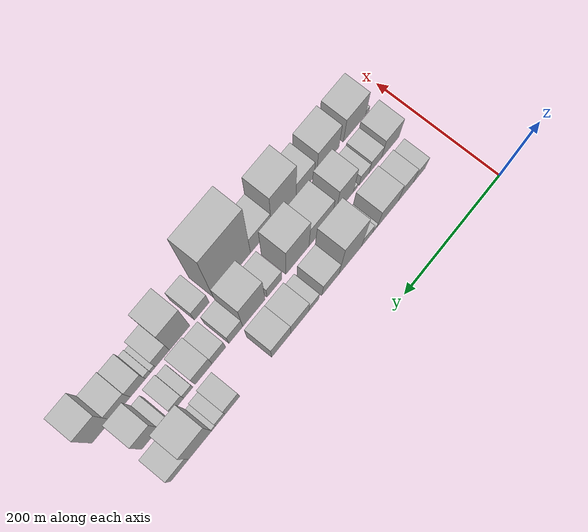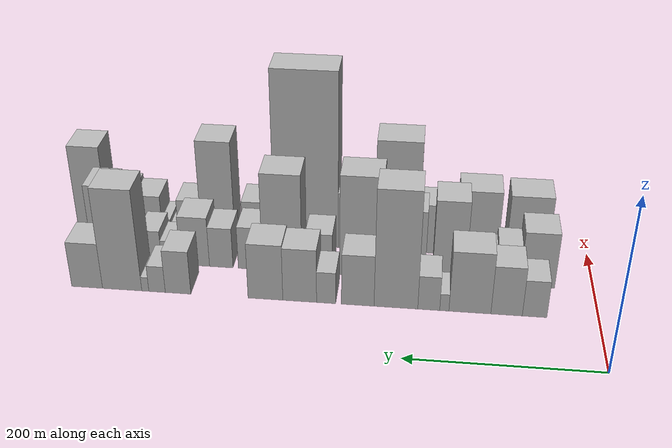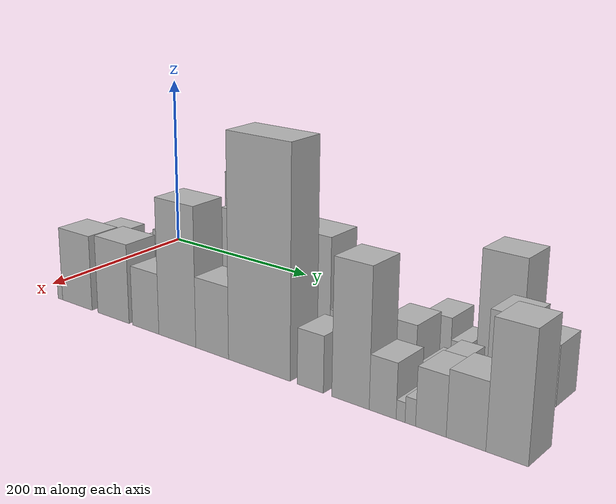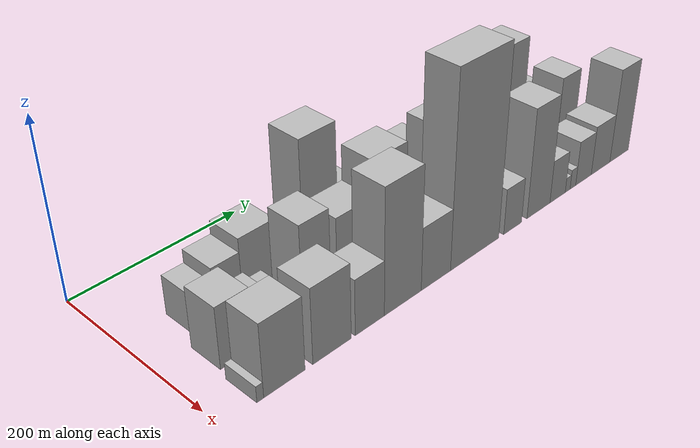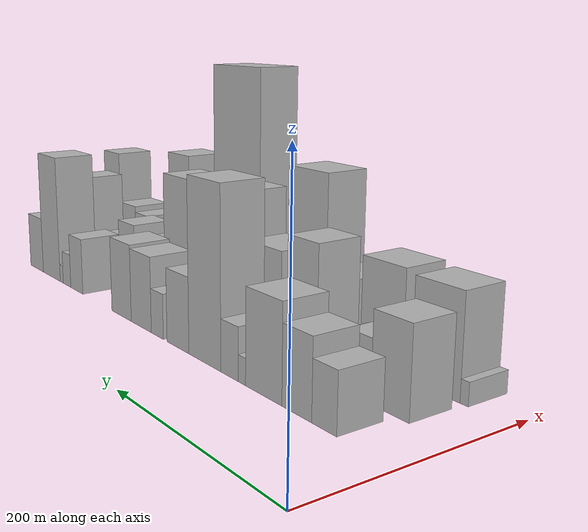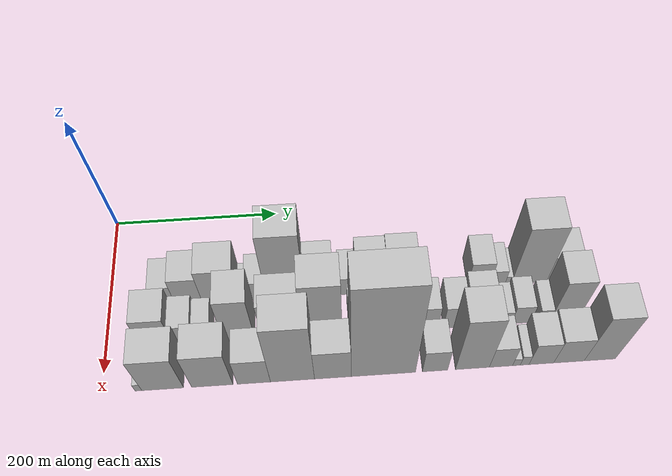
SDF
<sdf version="1.6">
 <world name="default">
  <model name="building_16">
   <static>1</static>
   <pose>100.0000 65.6419 0 0.000000 0.000000 0.000000</pose>
   <link name="link">
    <pose>0 0 22.50 0 0 0</pose>
    <collision name="collision"><geometry><box><size>40.0000 25.1513 45.0000</size></box></geometry></collision>
    <visual name="visual">
     <cast_shadows>0</cast_shadows>
     <geometry><box><size>40.0000 25.1513 45.0000</size></box></geometry>
     <material>
      <script>
       <uri>model://HANNAS_wall/materials/scripts</uri>
       <uri>model://HANNAS_wall/materials/textures</uri>
       <name>vrc/HANNAS_wall</name>
      </script>
     </material>
    </visual>
   </link>
  </model>
  <model name="building_17">
   <static>1</static>
   <pose>100.0000 94.3619 0 0.000000 0.000000 0.000000</pose>
   <link name="link">
    <pose>0 0 30.00 0 0 0</pose>
    <collision name="collision"><geometry><box><size>40.0000 32.2888 60.0000</size></box></geometry></collision>
    <visual name="visual">
     <cast_shadows>0</cast_shadows>
     <geometry><box><size>40.0000 32.2888 60.0000</size></box></geometry>
     <material>
      <script>
       <uri>model://HANNAS_wall/materials/scripts</uri>
       <uri>model://HANNAS_wall/materials/textures</uri>
       <name>vrc/HANNAS_wall</name>
      </script>
     </material>
    </visual>
   </link>
  </model>
  <model name="building_18">
   <static>1</static>
   <pose>100.0000 132.1816 0 0.000000 0.000000 0.000000</pose>
   <link name="link">
    <pose>0 0 37.50 0 0 0</pose>
    <collision name="collision"><geometry><box><size>40.0000 43.3505 75.0000</size></box></geometry></collision>
    <visual name="visual">
     <cast_shadows>0</cast_shadows>
     <geometry><box><size>40.0000 43.3505 75.0000</size></box></geometry>
     <material>
      <script>
       <uri>model://HANNAS_wall/materials/scripts</uri>
       <uri>model://HANNAS_wall/materials/textures</uri>
       <name>vrc/HANNAS_wall</name>
      </script>
     </material>
    </visual>
   </link>
  </model>
  <model name="building_19">
   <static>1</static>
   <pose>100.0000 158.6181 0 0.000000 0.000000 0.000000</pose>
   <link name="link">
    <pose>0 0 10.50 0 0 0</pose>
    <collision name="collision"><geometry><box><size>40.0000 9.5225 21.0000</size></box></geometry></collision>
    <visual name="visual">
     <cast_shadows>0</cast_shadows>
     <geometry><box><size>40.0000 9.5225 21.0000</size></box></geometry>
     <material>
      <script>
       <uri>model://HANNAS_wall/materials/scripts</uri>
       <uri>model://HANNAS_wall/materials/textures</uri>
       <name>vrc/HANNAS_wall</name>
      </script>
     </material>
    </visual>
   </link>
  </model>
  <model name="building_20">
   <static>1</static>
   <pose>100.0000 174.7911 0 0.000000 0.000000 0.000000</pose>
   <link name="link">
    <pose>0 0 21.00 0 0 0</pose>
    <collision name="collision"><geometry><box><size>40.0000 22.8234 42.0000</size></box></geometry></collision>
    <visual name="visual">
     <cast_shadows>0</cast_shadows>
     <geometry><box><size>40.0000 22.8234 42.0000</size></box></geometry>
     <material>
      <script>
       <uri>model://HANNAS_wall/materials/scripts</uri>
       <uri>model://HANNAS_wall/materials/textures</uri>
       <name>vrc/HANNAS_wall</name>
      </script>
     </material>
    </visual>
   </link>
  </model>
  <model name="building_21">
   <static>1</static>
   <pose>100.0000 209.1163 0 0.000000 0.000000 0.000000</pose>
   <link name="link">
    <pose>0 0 72.00 0 0 0</pose>
    <collision name="collision"><geometry><box><size>40.0000 45.8270 144.0000</size></box></geometry></collision>
    <visual name="visual">
     <cast_shadows>0</cast_shadows>
     <geometry><box><size>40.0000 45.8270 144.0000</size></box></geometry>
     <material>
      <script>
       <uri>model://HANNAS_wall/materials/scripts</uri>
       <uri>model://HANNAS_wall/materials/textures</uri>
       <name>vrc/HANNAS_wall</name>
      </script>
     </material>
    </visual>
   </link>
  </model>
  <model name="building_22">
   <static>1</static>
   <pose>100.0000 249.2329 0 0.000000 0.000000 0.000000</pose>
   <link name="link">
    <pose>0 0 31.50 0 0 0</pose>
    <collision name="collision"><geometry><box><size>40.0000 34.4062 63.0000</size></box></geometry></collision>
    <visual name="visual">
     <cast_shadows>0</cast_shadows>
     <geometry><box><size>40.0000 34.4062 63.0000</size></box></geometry>
     <material>
      <script>
       <uri>model://HANNAS_wall/materials/scripts</uri>
       <uri>model://HANNAS_wall/materials/textures</uri>
       <name>vrc/HANNAS_wall</name>
      </script>
     </material>
    </visual>
   </link>
  </model>
  <model name="building_23">
   <static>1</static>
   <pose>100.0000 282.5819 0 0.000000 0.000000 0.000000</pose>
   <link name="link">
    <pose>0 0 19.50 0 0 0</pose>
    <collision name="collision"><geometry><box><size>40.0000 20.2919 39.0000</size></box></geometry></collision>
    <visual name="visual">
     <cast_shadows>0</cast_shadows>
     <geometry><box><size>40.0000 20.2919 39.0000</size></box></geometry>
     <material>
      <script>
       <uri>model://HANNAS_wall/materials/scripts</uri>
       <uri>model://HANNAS_wall/materials/textures</uri>
       <name>vrc/HANNAS_wall</name>
      </script>
     </material>
    </visual>
   </link>
  </model>
  <model name="building_24">
   <static>1</static>
   <pose>100.0000 310.7004 0 0.000000 0.000000 0.000000</pose>
   <link name="link">
    <pose>0 0 33.00 0 0 0</pose>
    <collision name="collision"><geometry><box><size>40.0000 35.9451 66.0000</size></box></geometry></collision>
    <visual name="visual">
     <cast_shadows>0</cast_shadows>
     <geometry><box><size>40.0000 35.9451 66.0000</size></box></geometry>
     <material>
      <script>
       <uri>model://HANNAS_wall/materials/scripts</uri>
       <uri>model://HANNAS_wall/materials/textures</uri>
       <name>vrc/HANNAS_wall</name>
      </script>
     </material>
    </visual>
   </link>
  </model>
  <model name="building_25">
   <static>1</static>
   <pose>100.0000 347.2897 0 0.000000 0.000000 0.000000</pose>
   <link name="link">
    <pose>0 0 34.50 0 0 0</pose>
    <collision name="collision"><geometry><box><size>40.0000 37.2335 69.0000</size></box></geometry></collision>
    <visual name="visual">
     <cast_shadows>0</cast_shadows>
     <geometry><box><size>40.0000 37.2335 69.0000</size></box></geometry>
     <material>
      <script>
       <uri>model://HANNAS_wall/materials/scripts</uri>
       <uri>model://HANNAS_wall/materials/textures</uri>
       <name>vrc/HANNAS_wall</name>
      </script>
     </material>
    </visual>
   </link>
  </model>
  <model name="building_26">
   <static>1</static>
   <pose>100.0000 441.6426 0 0.000000 0.000000 0.000000</pose>
   <link name="link">
    <pose>0 0 27.00 0 0 0</pose>
    <collision name="collision"><geometry><box><size>40.0000 27.8241 54.0000</size></box></geometry></collision>
    <visual name="visual">
     <cast_shadows>0</cast_shadows>
     <geometry><box><size>40.0000 27.8241 54.0000</size></box></geometry>
     <material>
      <script>
       <uri>model://HANNAS_wall/materials/scripts</uri>
       <uri>model://HANNAS_wall/materials/textures</uri>
       <name>vrc/HANNAS_wall</name>
      </script>
     </material>
    </visual>
   </link>
  </model>
  <model name="building_27">
   <static>1</static>
   <pose>100.0000 464.5478 0 0.000000 0.000000 0.000000</pose>
   <link name="link">
    <pose>0 0 16.50 0 0 0</pose>
    <collision name="collision"><geometry><box><size>40.0000 17.9862 33.0000</size></box></geometry></collision>
    <visual name="visual">
     <cast_shadows>0</cast_shadows>
     <geometry><box><size>40.0000 17.9862 33.0000</size></box></geometry>
     <material>
      <script>
       <uri>model://HANNAS_wall/materials/scripts</uri>
       <uri>model://HANNAS_wall/materials/textures</uri>
       <name>vrc/HANNAS_wall</name>
      </script>
     </material>
    </visual>
   </link>
  </model>
  <model name="building_28">
   <static>1</static>
   <pose>100.0000 477.3907 0 0.000000 0.000000 0.000000</pose>
   <link name="link">
    <pose>0 0 9.00 0 0 0</pose>
    <collision name="collision"><geometry><box><size>40.0000 7.6996 18.0000</size></box></geometry></collision>
    <visual name="visual">
     <cast_shadows>0</cast_shadows>
     <geometry><box><size>40.0000 7.6996 18.0000</size></box></geometry>
     <material>
      <script>
       <uri>model://HANNAS_wall/materials/scripts</uri>
       <uri>model://HANNAS_wall/materials/textures</uri>
       <name>vrc/HANNAS_wall</name>
      </script>
     </material>
    </visual>
   </link>
  </model>
  <model name="building_29">
   <static>1</static>
   <pose>100.0000 502.8039 0 0.000000 0.000000 0.000000</pose>
   <link name="link">
    <pose>0 0 63.00 0 0 0</pose>
    <collision name="collision"><geometry><box><size>40.0000 43.1269 126.0000</size></box></geometry></collision>
    <visual name="visual">
     <cast_shadows>0</cast_shadows>
     <geometry><box><size>40.0000 43.1269 126.0000</size></box></geometry>
     <material>
      <script>
       <uri>model://HANNAS_wall/materials/scripts</uri>
       <uri>model://HANNAS_wall/materials/textures</uri>
       <name>vrc/HANNAS_wall</name>
      </script>
     </material>
    </visual>
   </link>
  </model>
  <model name="building_30">
   <static>1</static>
   <pose>100.0000 541.4067 0 0.000000 0.000000 0.000000</pose>
   <link name="link">
    <pose>0 0 28.50 0 0 0</pose>
    <collision name="collision"><geometry><box><size>40.0000 34.0788 57.0000</size></box></geometry></collision>
    <visual name="visual">
     <cast_shadows>0</cast_shadows>
     <geometry><box><size>40.0000 34.0788 57.0000</size></box></geometry>
     <material>
      <script>
       <uri>model://HANNAS_wall/materials/scripts</uri>
       <uri>model://HANNAS_wall/materials/textures</uri>
       <name>vrc/HANNAS_wall</name>
      </script>
     </material>
    </visual>
   </link>
  </model>
  <model name="building_48">
   <static>1</static>
   <pose>152.0000 59.6557 0 0.000000 0.000000 0.000000</pose>
   <link name="link">
    <pose>0 0 34.50 0 0 0</pose>
    <collision name="collision"><geometry><box><size>40.0000 36.9317 69.0000</size></box></geometry></collision>
    <visual name="visual">
     <cast_shadows>0</cast_shadows>
     <geometry><box><size>40.0000 36.9317 69.0000</size></box></geometry>
     <material>
      <script>
       <uri>model://HANNAS_wall/materials/scripts</uri>
       <uri>model://HANNAS_wall/materials/textures</uri>
       <name>vrc/HANNAS_wall</name>
      </script>
     </material>
    </visual>
   </link>
  </model>
  <model name="building_49">
   <static>1</static>
   <pose>152.0000 90.9917 0 0.000000 0.000000 0.000000</pose>
   <link name="link">
    <pose>0 0 24.00 0 0 0</pose>
    <collision name="collision"><geometry><box><size>40.0000 25.7403 48.0000</size></box></geometry></collision>
    <visual name="visual">
     <cast_shadows>0</cast_shadows>
     <geometry><box><size>40.0000 25.7403 48.0000</size></box></geometry>
     <material>
      <script>
       <uri>model://HANNAS_wall/materials/scripts</uri>
       <uri>model://HANNAS_wall/materials/textures</uri>
       <name>vrc/HANNAS_wall</name>
      </script>
     </material>
    </visual>
   </link>
  </model>
  <model name="building_50">
   <static>1</static>
   <pose>152.0000 114.0947 0 0.000000 0.000000 0.000000</pose>
   <link name="link">
    <pose>0 0 19.50 0 0 0</pose>
    <collision name="collision"><geometry><box><size>40.0000 20.4657 39.0000</size></box></geometry></collision>
    <visual name="visual">
     <cast_shadows>0</cast_shadows>
     <geometry><box><size>40.0000 20.4657 39.0000</size></box></geometry>
     <material>
      <script>
       <uri>model://HANNAS_wall/materials/scripts</uri>
       <uri>model://HANNAS_wall/materials/textures</uri>
       <name>vrc/HANNAS_wall</name>
      </script>
     </material>
    </visual>
   </link>
  </model>
  <model name="building_51">
   <static>1</static>
   <pose>152.0000 132.4865 0 0.000000 0.000000 0.000000</pose>
   <link name="link">
    <pose>0 0 9.00 0 0 0</pose>
    <collision name="collision"><geometry><box><size>40.0000 8.3181 18.0000</size></box></geometry></collision>
    <visual name="visual">
     <cast_shadows>0</cast_shadows>
     <geometry><box><size>40.0000 8.3181 18.0000</size></box></geometry>
     <material>
      <script>
       <uri>model://HANNAS_wall/materials/scripts</uri>
       <uri>model://HANNAS_wall/materials/textures</uri>
       <name>vrc/HANNAS_wall</name>
      </script>
     </material>
    </visual>
   </link>
  </model>
  <model name="building_52">
   <static>1</static>
   <pose>152.0000 154.5341 0 0.000000 0.000000 0.000000</pose>
   <link name="link">
    <pose>0 0 51.00 0 0 0</pose>
    <collision name="collision"><geometry><box><size>40.0000 35.7770 102.0000</size></box></geometry></collision>
    <visual name="visual">
     <cast_shadows>0</cast_shadows>
     <geometry><box><size>40.0000 35.7770 102.0000</size></box></geometry>
     <material>
      <script>
       <uri>model://HANNAS_wall/materials/scripts</uri>
       <uri>model://HANNAS_wall/materials/textures</uri>
       <name>vrc/HANNAS_wall</name>
      </script>
     </material>
    </visual>
   </link>
  </model>
  <model name="building_53">
   <static>1</static>
   <pose>152.0000 203.9236 0 0.000000 0.000000 0.000000</pose>
   <link name="link">
    <pose>0 0 43.50 0 0 0</pose>
    <collision name="collision"><geometry><box><size>40.0000 47.0020 87.0000</size></box></geometry></collision>
    <visual name="visual">
     <cast_shadows>0</cast_shadows>
     <geometry><box><size>40.0000 47.0020 87.0000</size></box></geometry>
     <material>
      <script>
       <uri>model://HANNAS_wall/materials/scripts</uri>
       <uri>model://HANNAS_wall/materials/textures</uri>
       <name>vrc/HANNAS_wall</name>
      </script>
     </material>
    </visual>
   </link>
  </model>
  <model name="building_54">
   <static>1</static>
   <pose>152.0000 250.4970 0 0.000000 0.000000 0.000000</pose>
   <link name="link">
    <pose>0 0 63.00 0 0 0</pose>
    <collision name="collision"><geometry><box><size>40.0000 46.1448 126.0000</size></box></geometry></collision>
    <visual name="visual">
     <cast_shadows>0</cast_shadows>
     <geometry><box><size>40.0000 46.1448 126.0000</size></box></geometry>
     <material>
      <script>
       <uri>model://HANNAS_wall/materials/scripts</uri>
       <uri>model://HANNAS_wall/materials/textures</uri>
       <name>vrc/HANNAS_wall</name>
      </script>
     </material>
    </visual>
   </link>
  </model>
  <model name="building_55">
   <static>1</static>
   <pose>152.0000 296.3945 0 0.000000 0.000000 0.000000</pose>
   <link name="link">
    <pose>0 0 25.50 0 0 0</pose>
    <collision name="collision"><geometry><box><size>40.0000 29.6503 51.0000</size></box></geometry></collision>
    <visual name="visual">
     <cast_shadows>0</cast_shadows>
     <geometry><box><size>40.0000 29.6503 51.0000</size></box></geometry>
     <material>
      <script>
       <uri>model://HANNAS_wall/materials/scripts</uri>
       <uri>model://HANNAS_wall/materials/textures</uri>
       <name>vrc/HANNAS_wall</name>
      </script>
     </material>
    </visual>
   </link>
  </model>
  <model name="building_56">
   <static>1</static>
   <pose>152.0000 337.0820 0 0.000000 0.000000 0.000000</pose>
   <link name="link">
    <pose>0 0 61.50 0 0 0</pose>
    <collision name="collision"><geometry><box><size>40.0000 43.7248 123.0000</size></box></geometry></collision>
    <visual name="visual">
     <cast_shadows>0</cast_shadows>
     <geometry><box><size>40.0000 43.7248 123.0000</size></box></geometry>
     <material>
      <script>
       <uri>model://HANNAS_wall/materials/scripts</uri>
       <uri>model://HANNAS_wall/materials/textures</uri>
       <name>vrc/HANNAS_wall</name>
      </script>
     </material>
    </visual>
   </link>
  </model>
  <model name="building_57">
   <static>1</static>
   <pose>152.0000 372.4463 0 0.000000 0.000000 0.000000</pose>
   <link name="link">
    <pose>0 0 27.00 0 0 0</pose>
    <collision name="collision"><geometry><box><size>40.0000 27.0036 54.0000</size></box></geometry></collision>
    <visual name="visual">
     <cast_shadows>0</cast_shadows>
     <geometry><box><size>40.0000 27.0036 54.0000</size></box></geometry>
     <material>
      <script>
       <uri>model://HANNAS_wall/materials/scripts</uri>
       <uri>model://HANNAS_wall/materials/textures</uri>
       <name>vrc/HANNAS_wall</name>
      </script>
     </material>
    </visual>
   </link>
  </model>
  <model name="building_58">
   <static>1</static>
   <pose>152.0000 405.1874 0 0.000000 0.000000 0.000000</pose>
   <link name="link">
    <pose>0 0 25.50 0 0 0</pose>
    <collision name="collision"><geometry><box><size>40.0000 26.4787 51.0000</size></box></geometry></collision>
    <visual name="visual">
     <cast_shadows>0</cast_shadows>
     <geometry><box><size>40.0000 26.4787 51.0000</size></box></geometry>
     <material>
      <script>
       <uri>model://HANNAS_wall/materials/scripts</uri>
       <uri>model://HANNAS_wall/materials/textures</uri>
       <name>vrc/HANNAS_wall</name>
      </script>
     </material>
    </visual>
   </link>
  </model>
  <model name="building_59">
   <static>1</static>
   <pose>152.0000 434.7213 0 0.000000 0.000000 0.000000</pose>
   <link name="link">
    <pose>0 0 31.50 0 0 0</pose>
    <collision name="collision"><geometry><box><size>40.0000 32.5890 63.0000</size></box></geometry></collision>
    <visual name="visual">
     <cast_shadows>0</cast_shadows>
     <geometry><box><size>40.0000 32.5890 63.0000</size></box></geometry>
     <material>
      <script>
       <uri>model://HANNAS_wall/materials/scripts</uri>
       <uri>model://HANNAS_wall/materials/textures</uri>
       <name>vrc/HANNAS_wall</name>
      </script>
     </material>
    </visual>
   </link>
  </model>
  <model name="building_60">
   <static>1</static>
   <pose>152.0000 463.7030 0 0.000000 0.000000 0.000000</pose>
   <link name="link">
    <pose>0 0 15.00 0 0 0</pose>
    <collision name="collision"><geometry><box><size>40.0000 17.3745 30.0000</size></box></geometry></collision>
    <visual name="visual">
     <cast_shadows>0</cast_shadows>
     <geometry><box><size>40.0000 17.3745 30.0000</size></box></geometry>
     <material>
      <script>
       <uri>model://HANNAS_wall/materials/scripts</uri>
       <uri>model://HANNAS_wall/materials/textures</uri>
       <name>vrc/HANNAS_wall</name>
      </script>
     </material>
    </visual>
   </link>
  </model>
  <model name="building_61">
   <static>1</static>
   <pose>152.0000 483.8097 0 0.000000 0.000000 0.000000</pose>
   <link name="link">
    <pose>0 0 21.00 0 0 0</pose>
    <collision name="collision"><geometry><box><size>40.0000 22.8388 42.0000</size></box></geometry></collision>
    <visual name="visual">
     <cast_shadows>0</cast_shadows>
     <geometry><box><size>40.0000 22.8388 42.0000</size></box></geometry>
     <material>
      <script>
       <uri>model://HANNAS_wall/materials/scripts</uri>
       <uri>model://HANNAS_wall/materials/textures</uri>
       <name>vrc/HANNAS_wall</name>
      </script>
     </material>
    </visual>
   </link>
  </model>
  <model name="building_62">
   <static>1</static>
   <pose>152.0000 510.8412 0 0.000000 0.000000 0.000000</pose>
   <link name="link">
    <pose>0 0 15.00 0 0 0</pose>
    <collision name="collision"><geometry><box><size>40.0000 15.2241 30.0000</size></box></geometry></collision>
    <visual name="visual">
     <cast_shadows>0</cast_shadows>
     <geometry><box><size>40.0000 15.2241 30.0000</size></box></geometry>
     <material>
      <script>
       <uri>model://HANNAS_wall/materials/scripts</uri>
       <uri>model://HANNAS_wall/materials/textures</uri>
       <name>vrc/HANNAS_wall</name>
      </script>
     </material>
    </visual>
   </link>
  </model>
  <model name="building_63">
   <static>1</static>
   <pose>152.0000 534.8917 0 0.000000 0.000000 0.000000</pose>
   <link name="link">
    <pose>0 0 48.00 0 0 0</pose>
    <collision name="collision"><geometry><box><size>40.0000 32.8769 96.0000</size></box></geometry></collision>
    <visual name="visual">
     <cast_shadows>0</cast_shadows>
     <geometry><box><size>40.0000 32.8769 96.0000</size></box></geometry>
     <material>
      <script>
       <uri>model://HANNAS_wall/materials/scripts</uri>
       <uri>model://HANNAS_wall/materials/textures</uri>
       <name>vrc/HANNAS_wall</name>
      </script>
     </material>
    </visual>
   </link>
  </model>
  <model name="building_78">
   <static>1</static>
   <pose>204.0000 40.9132 0 0.000000 0.000000 0.000000</pose>
   <link name="link">
    <pose>0 0 9.00 0 0 0</pose>
    <collision name="collision"><geometry><box><size>40.0000 7.4603 18.0000</size></box></geometry></collision>
    <visual name="visual">
     <cast_shadows>0</cast_shadows>
     <geometry><box><size>40.0000 7.4603 18.0000</size></box></geometry>
     <material>
      <script>
       <uri>model://HANNAS_wall/materials/scripts</uri>
       <uri>model://HANNAS_wall/materials/textures</uri>
       <name>vrc/HANNAS_wall</name>
      </script>
     </material>
    </visual>
   </link>
  </model>
  <model name="building_79">
   <static>1</static>
   <pose>204.0000 67.9867 0 0.000000 0.000000 0.000000</pose>
   <link name="link">
    <pose>0 0 40.50 0 0 0</pose>
    <collision name="collision"><geometry><box><size>40.0000 46.6868 81.0000</size></box></geometry></collision>
    <visual name="visual">
     <cast_shadows>0</cast_shadows>
     <geometry><box><size>40.0000 46.6868 81.0000</size></box></geometry>
     <material>
      <script>
       <uri>model://HANNAS_wall/materials/scripts</uri>
       <uri>model://HANNAS_wall/materials/textures</uri>
       <name>vrc/HANNAS_wall</name>
      </script>
     </material>
    </visual>
   </link>
  </model>
  <model name="building_80">
   <static>1</static>
   <pose>204.0000 123.5372 0 0.000000 0.000000 0.000000</pose>
   <link name="link">
    <pose>0 0 42.00 0 0 0</pose>
    <collision name="collision"><geometry><box><size>40.0000 46.4142 84.0000</size></box></geometry></collision>
    <visual name="visual">
     <cast_shadows>0</cast_shadows>
     <geometry><box><size>40.0000 46.4142 84.0000</size></box></geometry>
     <material>
      <script>
       <uri>model://HANNAS_wall/materials/scripts</uri>
       <uri>model://HANNAS_wall/materials/textures</uri>
       <name>vrc/HANNAS_wall</name>
      </script>
     </material>
    </visual>
   </link>
  </model>
  <model name="building_81">
   <static>1</static>
   <pose>204.0000 170.4003 0 0.000000 0.000000 0.000000</pose>
   <link name="link">
    <pose>0 0 31.50 0 0 0</pose>
    <collision name="collision"><geometry><box><size>40.0000 37.3120 63.0000</size></box></geometry></collision>
    <visual name="visual">
     <cast_shadows>0</cast_shadows>
     <geometry><box><size>40.0000 37.3120 63.0000</size></box></geometry>
     <material>
      <script>
       <uri>model://HANNAS_wall/materials/scripts</uri>
       <uri>model://HANNAS_wall/materials/textures</uri>
       <name>vrc/HANNAS_wall</name>
      </script>
     </material>
    </visual>
   </link>
  </model>
  <model name="building_82">
   <static>1</static>
   <pose>204.0000 213.9081 0 0.000000 0.000000 0.000000</pose>
   <link name="link">
    <pose>0 0 70.50 0 0 0</pose>
    <collision name="collision"><geometry><box><size>40.0000 49.7035 141.0000</size></box></geometry></collision>
    <visual name="visual">
     <cast_shadows>0</cast_shadows>
     <geometry><box><size>40.0000 49.7035 141.0000</size></box></geometry>
     <material>
      <script>
       <uri>model://HANNAS_wall/materials/scripts</uri>
       <uri>model://HANNAS_wall/materials/textures</uri>
       <name>vrc/HANNAS_wall</name>
      </script>
     </material>
    </visual>
   </link>
  </model>
  <model name="building_83">
   <static>1</static>
   <pose>204.0000 259.5939 0 0.000000 0.000000 0.000000</pose>
   <link name="link">
    <pose>0 0 36.00 0 0 0</pose>
    <collision name="collision"><geometry><box><size>40.0000 41.6681 72.0000</size></box></geometry></collision>
    <visual name="visual">
     <cast_shadows>0</cast_shadows>
     <geometry><box><size>40.0000 41.6681 72.0000</size></box></geometry>
     <material>
      <script>
       <uri>model://HANNAS_wall/materials/scripts</uri>
       <uri>model://HANNAS_wall/materials/textures</uri>
       <name>vrc/HANNAS_wall</name>
      </script>
     </material>
    </visual>
   </link>
  </model>
  <model name="building_84">
   <static>1</static>
   <pose>204.0000 317.0204 0 0.000000 0.000000 0.000000</pose>
   <link name="link">
    <pose>0 0 109.50 0 0 0</pose>
    <collision name="collision"><geometry><box><size>40.0000 73.1849 219.0000</size></box></geometry></collision>
    <visual name="visual">
     <cast_shadows>0</cast_shadows>
     <geometry><box><size>40.0000 73.1849 219.0000</size></box></geometry>
     <material>
      <script>
       <uri>model://HANNAS_wall/materials/scripts</uri>
       <uri>model://HANNAS_wall/materials/textures</uri>
       <name>vrc/HANNAS_wall</name>
      </script>
     </material>
    </visual>
   </link>
  </model>
  <model name="building_85">
   <static>1</static>
   <pose>204.0000 376.0076 0 0.000000 0.000000 0.000000</pose>
   <link name="link">
    <pose>0 0 27.00 0 0 0</pose>
    <collision name="collision"><geometry><box><size>40.0000 28.7895 54.0000</size></box></geometry></collision>
    <visual name="visual">
     <cast_shadows>0</cast_shadows>
     <geometry><box><size>40.0000 28.7895 54.0000</size></box></geometry>
     <material>
      <script>
       <uri>model://HANNAS_wall/materials/scripts</uri>
       <uri>model://HANNAS_wall/materials/textures</uri>
       <name>vrc/HANNAS_wall</name>
      </script>
     </material>
    </visual>
   </link>
  </model>
  <model name="building_86">
   <static>1</static>
   <pose>204.0000 418.8934 0 0.000000 0.000000 0.000000</pose>
   <link name="link">
    <pose>0 0 64.50 0 0 0</pose>
    <collision name="collision"><geometry><box><size>40.0000 38.9821 129.0000</size></box></geometry></collision>
    <visual name="visual">
     <cast_shadows>0</cast_shadows>
     <geometry><box><size>40.0000 38.9821 129.0000</size></box></geometry>
     <material>
      <script>
       <uri>model://HANNAS_wall/materials/scripts</uri>
       <uri>model://HANNAS_wall/materials/textures</uri>
       <name>vrc/HANNAS_wall</name>
      </script>
     </material>
    </visual>
   </link>
  </model>
  <model name="building_87">
   <static>1</static>
   <pose>204.0000 451.8083 0 0.000000 0.000000 0.000000</pose>
   <link name="link">
    <pose>0 0 25.50 0 0 0</pose>
    <collision name="collision"><geometry><box><size>40.0000 26.8478 51.0000</size></box></geometry></collision>
    <visual name="visual">
     <cast_shadows>0</cast_shadows>
     <geometry><box><size>40.0000 26.8478 51.0000</size></box></geometry>
     <material>
      <script>
       <uri>model://HANNAS_wall/materials/scripts</uri>
       <uri>model://HANNAS_wall/materials/textures</uri>
       <name>vrc/HANNAS_wall</name>
      </script>
     </material>
    </visual>
   </link>
  </model>
  <model name="building_88">
   <static>1</static>
   <pose>204.0000 469.5427 0 0.000000 0.000000 0.000000</pose>
   <link name="link">
    <pose>0 0 9.00 0 0 0</pose>
    <collision name="collision"><geometry><box><size>40.0000 8.6209 18.0000</size></box></geometry></collision>
    <visual name="visual">
     <cast_shadows>0</cast_shadows>
     <geometry><box><size>40.0000 8.6209 18.0000</size></box></geometry>
     <material>
      <script>
       <uri>model://HANNAS_wall/materials/scripts</uri>
       <uri>model://HANNAS_wall/materials/textures</uri>
       <name>vrc/HANNAS_wall</name>
      </script>
     </material>
    </visual>
   </link>
  </model>
  <model name="building_89">
   <static>1</static>
   <pose>204.0000 478.9272 0 0.000000 0.000000 0.000000</pose>
   <link name="link">
    <pose>0 0 12.00 0 0 0</pose>
    <collision name="collision"><geometry><box><size>40.0000 10.1482 24.0000</size></box></geometry></collision>
    <visual name="visual">
     <cast_shadows>0</cast_shadows>
     <geometry><box><size>40.0000 10.1482 24.0000</size></box></geometry>
     <material>
      <script>
       <uri>model://HANNAS_wall/materials/scripts</uri>
       <uri>model://HANNAS_wall/materials/textures</uri>
       <name>vrc/HANNAS_wall</name>
      </script>
     </material>
    </visual>
   </link>
  </model>
  <model name="building_90">
   <static>1</static>
   <pose>204.0000 498.2956 0 0.000000 0.000000 0.000000</pose>
   <link name="link">
    <pose>0 0 27.00 0 0 0</pose>
    <collision name="collision"><geometry><box><size>40.0000 28.5885 54.0000</size></box></geometry></collision>
    <visual name="visual">
     <cast_shadows>0</cast_shadows>
     <geometry><box><size>40.0000 28.5885 54.0000</size></box></geometry>
     <material>
      <script>
       <uri>model://HANNAS_wall/materials/scripts</uri>
       <uri>model://HANNAS_wall/materials/textures</uri>
       <name>vrc/HANNAS_wall</name>
      </script>
     </material>
    </visual>
   </link>
  </model>
  <model name="building_91">
   <static>1</static>
   <pose>204.0000 530.2726 0 0.000000 0.000000 0.000000</pose>
   <link name="link">
    <pose>0 0 30.00 0 0 0</pose>
    <collision name="collision"><geometry><box><size>40.0000 35.3655 60.0000</size></box></geometry></collision>
    <visual name="visual">
     <cast_shadows>0</cast_shadows>
     <geometry><box><size>40.0000 35.3655 60.0000</size></box></geometry>
     <material>
      <script>
       <uri>model://HANNAS_wall/materials/scripts</uri>
       <uri>model://HANNAS_wall/materials/textures</uri>
       <name>vrc/HANNAS_wall</name>
      </script>
     </material>
    </visual>
   </link>
  </model>
  <model name="building_92">
   <static>1</static>
   <pose>204.0000 566.0615 0 0.000000 0.000000 0.000000</pose>
   <link name="link">
    <pose>0 0 57.00 0 0 0</pose>
    <collision name="collision"><geometry><box><size>40.0000 36.2123 114.0000</size></box></geometry></collision>
    <visual name="visual">
     <cast_shadows>0</cast_shadows>
     <geometry><box><size>40.0000 36.2123 114.0000</size></box></geometry>
     <material>
      <script>
       <uri>model://HANNAS_wall/materials/scripts</uri>
       <uri>model://HANNAS_wall/materials/textures</uri>
       <name>vrc/HANNAS_wall</name>
      </script>
     </material>
    </visual>
   </link>
  </model>
 </world>
</sdf>
